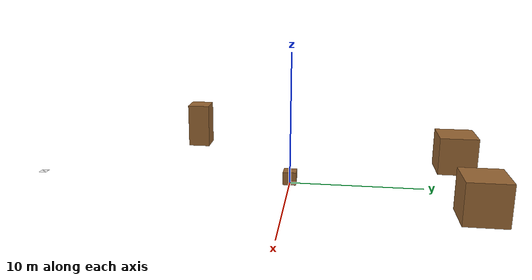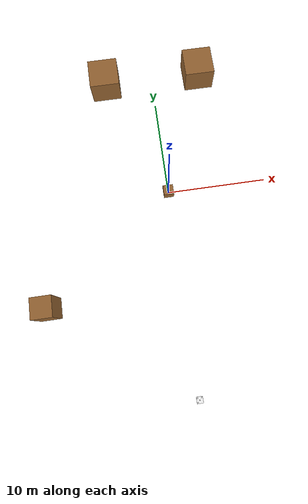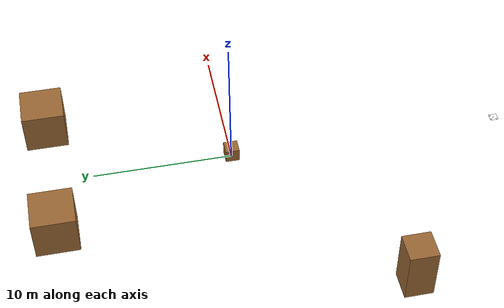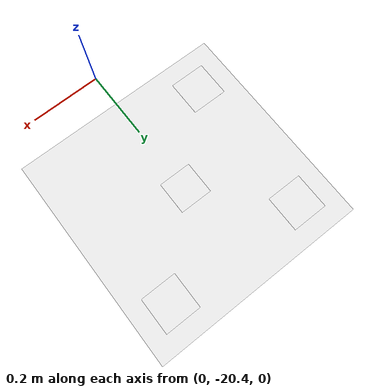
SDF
<sdf version="1.7">
 <world name="world_demo">
  <gravity>0 0 -9.8</gravity>
  <physics type="ode"><max_step_size>0.01</max_step_size><real_time_factor>1</real_time_factor></physics>
  <plugin name="ignition::gazebo::systems::Physics" filename="libignition-gazebo-physics-system.so"/>
  <plugin name="ignition::gazebo::systems::UserCommands" filename="libignition-gazebo-user-commands-system.so"/>
  <plugin name="ignition::gazebo::systems::SceneBroadcaster" filename="libignition-gazebo-scene-broadcaster-system.so"/>
  <plugin name="ignition::gazebo::systems::Imu" filename="ignition-gazebo-imu-system"/>
  <plugin name="ignition::gazebo::systems::Sensors" filename="ignition-gazebo-sensors-system">
   <render_engine>ogre2</render_engine>
  </plugin>
  <scene>
   <ambient>1 1 1 1</ambient>
   <background>0.3 0.7 0.9 1</background>
   <shadows>0</shadows>
   <grid>false</grid>
  </scene>
  <light type="directional" name="sun">
   <cast_shadows>0</cast_shadows>
   <pose>-5 -3 10 0 0 0</pose>
   <diffuse>1 1 1 1</diffuse>
   <specular>1 1 1 1</specular>
   <direction>0 0 -1</direction>
  </light>
  <model name="ground_plane">
   <static>true</static>
   <link name="link">
    <collision name="collision">
     <geometry><plane><normal>0.0 0.0 1</normal><size>1 1</size></plane></geometry>
    </collision>
   </link>
  </model>
  <include>
   <uri>model://ArUcoMarkers/ArUcoMarker_10.sdf</uri>
   <name>ArUcoMarker_10</name>
   <pose>-0.2 -19.8 0.011 0 0 1.5708</pose>
  </include>
  <include>
   <uri>model://ArUcoMarkers/ArUcoMarker_20.sdf</uri>
   <name>ArUcoMarker_20</name>
   <pose>0.2 -19.8 0.011 0 0 1.5708</pose>
  </include>
  <include>
   <uri>model://ArUcoMarkers/ArUcoMarker_30.sdf</uri>
   <name>ArUcoMarker_30</name>
   <pose>-0.2 -20.2 0.011 0 0 1.5708</pose>
  </include>
  <include>
   <uri>model://ArUcoMarkers/ArUcoMarker_base.sdf</uri>
   <name>ArUcoMarker_base</name>
   <pose>0 -20.0 0.01 0 0 0</pose>
  </include>
  <include>
   <uri>model://ArUcoMarkers/ArUcoMarker_inner.sdf</uri>
   <name>ArUcoMarker_inner</name>
   <pose>0 -20.0 0.02 0 0 0</pose>
  </include>
  <model name="box_01">
   <pose>0 0 0.5 0 0 0</pose>
   <static>true</static>
   <link name="link">
    <collision name="collision"><geometry><box><size>1 1 1</size></box></geometry></collision>
    <visual name="visual">
     <geometry><box><size>1 1 1</size></box></geometry>
     <material><ambient>0.5 0.3 0.2 1</ambient><diffuse>0.6 0.4 0.2 1</diffuse></material>
    </visual>
   </link>
  </model>
  <model name="box_1">
   <pose>5 13 1.5 0 0 0</pose>
   <static>true</static>
   <link name="link">
    <collision name="collision"><geometry><box><size>3 3 3</size></box></geometry></collision>
    <visual name="visual">
     <geometry><box><size>3 3 3</size></box></geometry>
     <material><ambient>0.5 0.3 0.2 1</ambient><diffuse>0.6 0.4 0.2 1</diffuse></material>
    </visual>
   </link>
  </model>
  <model name="box_2">
   <pose>-5 13 1.5 0 0 0</pose>
   <static>true</static>
   <link name="link">
    <collision name="collision"><geometry><box><size>3 3 3</size></box></geometry></collision>
    <visual name="visual">
     <geometry><box><size>3 3 3</size></box></geometry>
     <material><ambient>0.5 0.3 0.2 1</ambient><diffuse>0.6 0.4 0.2 1</diffuse></material>
    </visual>
   </link>
  </model>
  <model name="box_5m">
   <pose>-13 -10 1 0 0 0</pose>
   <static>true</static>
   <link name="link">
    <collision name="collision"><geometry><box><size>2 2 4</size></box></geometry></collision>
    <visual name="visual">
     <geometry><box><size>2 2 4</size></box></geometry>
     <material><ambient>0.5 0.3 0.2 1</ambient><diffuse>0.6 0.4 0.2 1</diffuse></material>
    </visual>
   </link>
  </model>
 </world>
</sdf>

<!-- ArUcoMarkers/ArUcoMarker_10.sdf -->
<sdf version="1.7">
  <model name="ArUcoMarker_0">
    <static>true</static>
    <link name="link">
      <pose>0 0 0 0 0 0</pose>
      <visual name="marker_visual">
        <pose>0 0 0.001 0 0 -1.5708</pose> <!-- 微抬高避免 Z-fighting -->
        <geometry>
          <plane>
            <normal>0 0 1</normal>
            <size>0.1 0.1</size> <!-- 根據需求改大小 -->
          </plane>
        </geometry>
        <material>
          <pbr>
            <metal>
              <albedo_map>model://ArUcoMarkers/textures/Original_ArUco/aruco-10.png</albedo_map>
              <metalness>0.0</metalness>
              <roughness>1.0</roughness>
            </metal>
          </pbr>
          <ambient>1 1 1 1</ambient>
          <diffuse>1 1 1 1</diffuse>
        </material>
      </visual>
    </link>
  </model>
</sdf>

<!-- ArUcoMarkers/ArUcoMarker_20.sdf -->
<sdf version="1.7">
  <model name="ArUcoMarker_1">
    <static>true</static>
    <link name="link">
      <pose>0 0 0 0 0 0</pose>
      <visual name="marker_visual">
        <pose>0 0 0.001 0 0 -1.5708</pose> <!-- 微抬高避免 Z-fighting -->
        <geometry>
          <plane>
            <normal>0 0 1</normal>
            <size>0.1 0.1</size> <!-- 根據需求改大小 -->
          </plane>
        </geometry>
        <material>
          <pbr>
            <metal>
              <albedo_map>model://ArUcoMarkers/textures/Original_ArUco/aruco-20.png</albedo_map>
              <metalness>0.0</metalness>
              <roughness>1.0</roughness>
            </metal>
          </pbr>
          <ambient>1 1 1 1</ambient>
          <diffuse>1 1 1 1</diffuse>
        </material>
      </visual>
    </link>
  </model>
</sdf>

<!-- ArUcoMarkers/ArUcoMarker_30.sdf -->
<sdf version="1.7">
  <model name="ArUcoMarker_2">
    <static>true</static>
    <link name="link">
      <pose>0 0 0 0 0 0</pose>
      <visual name="marker_visual">
        <pose>0 0 0.001 0 0 -1.5708</pose> <!-- 微抬高避免 Z-fighting -->
        <geometry>
          <plane>
            <normal>0 0 1</normal>
            <size>0.1 0.1</size> <!-- 根據需求改大小 -->
          </plane>
        </geometry>
        <material>
          <pbr>
            <metal>
              <albedo_map>model://ArUcoMarkers/textures/Original_ArUco/aruco-30.png</albedo_map>
              <metalness>0.0</metalness>
              <roughness>1.0</roughness>
            </metal>
          </pbr>
          <ambient>1 1 1 1</ambient>
          <diffuse>1 1 1 1</diffuse>
        </material>
      </visual>
    </link>
  </model>
</sdf>

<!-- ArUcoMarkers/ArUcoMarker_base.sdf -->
<sdf version="1.7">
  <model name="ArUcoMarker_base">
    <static>true</static>
    <link name="link">
      <pose>0 0 0 0 0 0</pose>
      <visual name="marker_visual">
        <pose>0 0 0.001 0 0 -1.5708</pose> <!-- 微抬高避免 Z-fighting -->
        <geometry>
          <plane>
            <normal>0 0 1</normal>
            <size>0.6 0.6</size> <!-- 根據需求改大小 -->
          </plane>
        </geometry>
        <material>
          <pbr>
            <metal>
              <albedo_map>model://ArUcoMarkers/textures/ArUcoMarker_base.png</albedo_map>
              <metalness>0.0</metalness>
              <roughness>1.0</roughness>
            </metal>
          </pbr>
          <ambient>1 1 1 1</ambient>
          <diffuse>1 1 1 1</diffuse>
        </material>
      </visual>
    </link>
  </model>
</sdf>

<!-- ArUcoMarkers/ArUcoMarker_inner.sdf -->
<sdf version="1.7">
  <model name="ArUcoMarker_inner">
    <static>true</static>
    <link name="link">
      <pose>0 0 0 0 0 0</pose>
      <visual name="marker_visual">
        <pose>0 0 0.001 0 0 0</pose> <!-- 微抬高避免 Z-fighting -->
        <geometry>
          <plane>
            <normal>0 0 1</normal>
            <size>0.09 0.09</size> <!-- 根據需求改大小 -->
          </plane>
        </geometry>
        <material>
          <pbr>
            <metal>
              <albedo_map>model://ArUcoMarkers/textures/inner_marker.png</albedo_map>
              <metalness>0.0</metalness>
              <roughness>1.0</roughness>
            </metal>
          </pbr>
          <ambient>1 1 1 1</ambient>
          <diffuse>1 1 1 1</diffuse>
        </material>
      </visual>
    </link>
  </model>
</sdf>
